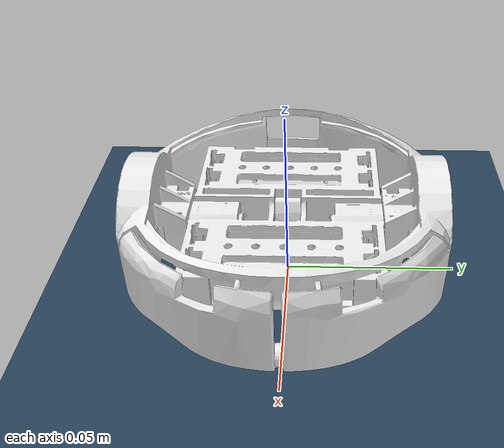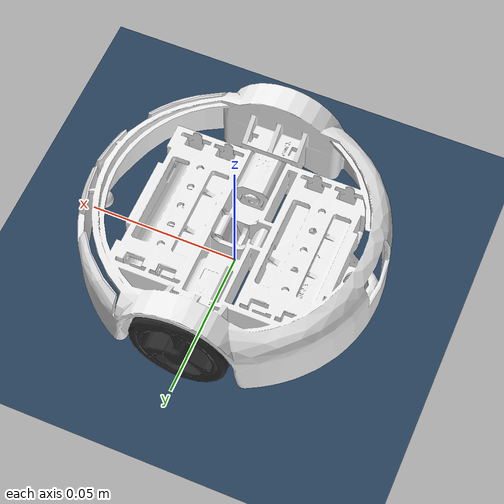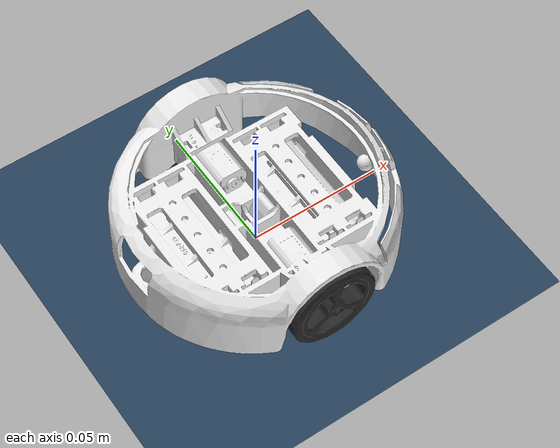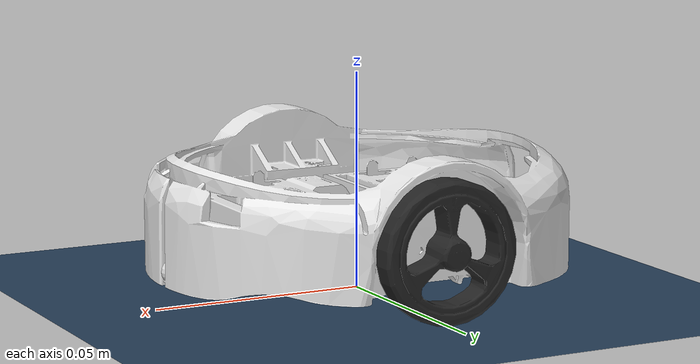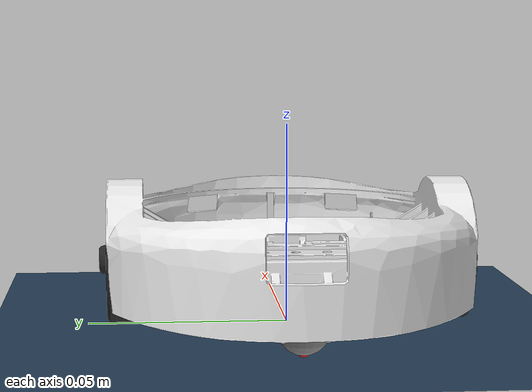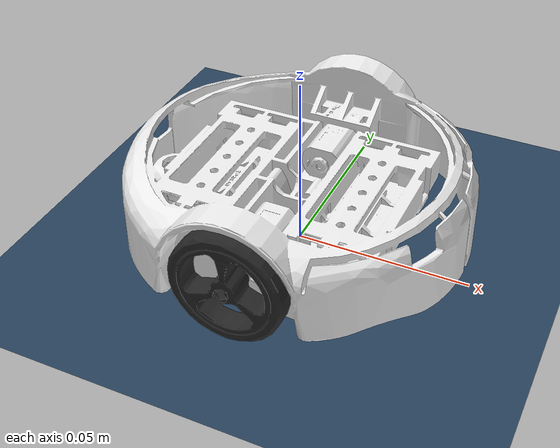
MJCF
<mujoco model="pololu_calibrated">
  <compiler angle="radian" inertiafromgeom="true"/>

  <option timestep="0.001" integrator="implicit" gravity="0 0 -9.81"/>

  <visual>
    <global azimuth="45" elevation="-30" offwidth="1920" offheight="1080"/>
    <headlight ambient="0.3 0.3 0.3" diffuse="0.6 0.6 0.6"/>
  </visual>

  <asset>
    <texture type="skybox" builtin="gradient" rgb1="0.3 0.5 0.7" rgb2="0 0 0" width="512" height="3072"/>
    <texture type="2d" name="groundplane" builtin="checker" mark="edge"
             rgb1="0.2 0.3 0.4" rgb2="0.1 0.2 0.3" markrgb="0.8 0.8 0.8"
             width="300" height="300"/>
    <material name="groundplane" texture="groundplane" texuniform="true" texrepeat="10 10" reflectance="0"/>
    <texture name="wheel_tex" type="2d" builtin="checker"
            rgb1="0.05 0.05 0.05" rgb2="0.9 0.9 0.9"
            width="256" height="256"/>
    <material name="wheel_mat" texture="wheel_tex"
              texrepeat="6 1" texuniform="true" reflectance="0.0"/>
    <mesh name="chassis_mesh" file="pololu_chassis.stl"/>
    <mesh name="wheel_mesh" file="pololu_wheel.stl"/>
  </asset>

  <worldbody>
    <geom name="floor" type="plane" size="0 0 0.05" material="groundplane"
          friction="0.9 0.005 0.0001"
          solref="0.003 2" solimp="0.99 0.9999 0.0005"/>

    <light pos="0 0 1.5" dir="0 0 -1" directional="true"/>

    <body name="chassis" pos="0 0 0.0163">
      <freejoint name="root"/>
      <camera name="track_cam" mode="track" pos="0 -0.6 0.25" xyaxes="1 0 0 0 0.6 1"/>

      <geom name="chassis_visual" type="mesh" mesh="chassis_mesh"
            contype="0" conaffinity="0" mass="0"
            rgba="0.93 0.93 0.93 1.0"/>

      <geom name="chassis_deck" type="cylinder"
            size="0.0485 0.0077" pos="0 0 -0.0033"
            contype="0" conaffinity="0"
            rgba="0.93 0.93 0.93 0.0" mass="0.0783"/>

      <geom name="control_board" type="cylinder"
            size="0.045 0.001" pos="0 0 0.006"
            contype="0" conaffinity="0"
            rgba="0.10 0.35 0.20 0.0" mass="0.032"/>

      <geom name="battery_pack" type="box"
            size="0.0225 0.020 0.0055" pos="-0.0070566 0 -0.00174"
            contype="0" conaffinity="0"
            rgba="0.2 0.2 0.2 0.0" mass="0.052"/>

      <body name="left_wheel" pos="0.0 0.0421 0.0">
        <joint name="left_wheel_joint" type="hinge" axis="0 1 0"
               damping="0.0" armature="3.5205e-6" frictionloss="2e-6"/>
        <geom name="left_wheel_visual" type="mesh" mesh="wheel_mesh"
              contype="0" conaffinity="0" mass="0"
              rgba="0.15 0.15 0.15 1"/>
        <geom name="left_wheel_geom" type="cylinder" size="0.016 0.0019"
              rgba="1 1 1 0" euler="1.5708 0 0"
              material="wheel_mat" mass="0.0036"
              friction="0.9 0.001 0.0001"
              solref="0.003 2" solimp="0.99 0.9999 0.0005"/>
      </body>

      <body name="right_wheel" pos="0.0 -0.0421 0.0">
        <joint name="right_wheel_joint" type="hinge" axis="0 1 0"
               damping="0.0" armature="3.5205e-6" frictionloss="2e-6"/>
        <geom name="right_wheel_visual" type="mesh" mesh="wheel_mesh"
              contype="0" conaffinity="0" mass="0"
              rgba="0.15 0.15 0.15 1"/>
        <geom name="right_wheel_geom" type="cylinder" size="0.016 0.0019"
              rgba="1 1 1 0" euler="1.5708 0 0"
              material="wheel_mat" mass="0.0036"
              friction="0.9 0.001 0.0001"
              solref="0.003 2" solimp="0.99 0.9999 0.0005"/>
      </body>

      <body name="caster" pos="-0.04037 0.0 -0.00940">
        <joint name="caster_ball" type="ball" frictionloss="2e-7" damping="0"/>
        <geom name="caster_geom" type="sphere" size="0.00635"
              rgba="0.5 0.5 0.5 1"
              friction="0.35 0.001 0.0001"
              mass="0.0015"/>
        <geom name="caster_marker" type="sphere" size="0.0017" pos="0 0 -0.0052"
              rgba="0.9 0.1 0.1 1" contype="0" conaffinity="0" mass="0"/>
      </body>

      <geom name="nose_skid" type="sphere" size="0.003"
            pos="0.0455 0 -0.008"
            rgba="0.93 0.93 0.93 1.0"
            friction="0.35 0.001 0.0001"
            mass="0"/>

    </body>
  </worldbody>

  <contact>
    <pair name="floor_caster" geom1="floor" geom2="caster_geom"
          friction="0.35 0.35 0.001 0.0001 0.0001"
          solref="-5000 -40"/>
    <pair name="floor_nose" geom1="floor" geom2="nose_skid"
          friction="0.35 0.35 0.001 0.0001 0.0001"
          solref="-10000 -60"/>
  </contact>

  <actuator>
    <!-- kv = T_stall/omega_max = 0.0368/230 = 1.6000e-4; ctrlrange = +-1.2*omega_max -->
    <velocity name="left_motor"  joint="left_wheel_joint"  kv="1.6e-4" ctrlrange="-276 276"/>
    <velocity name="right_motor" joint="right_wheel_joint" kv="1.6e-4" ctrlrange="-276 276"/>
  </actuator>

</mujoco>
